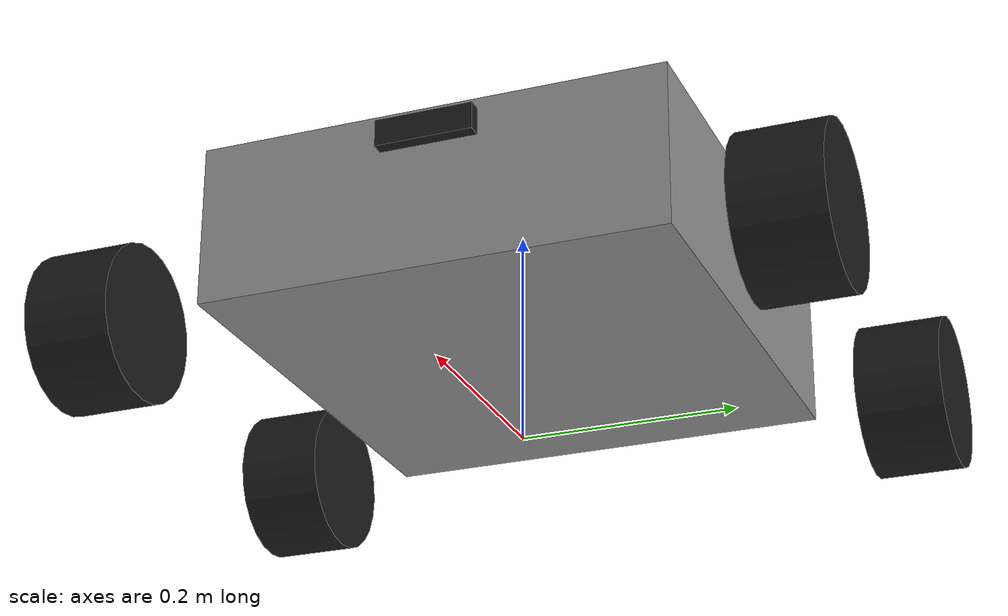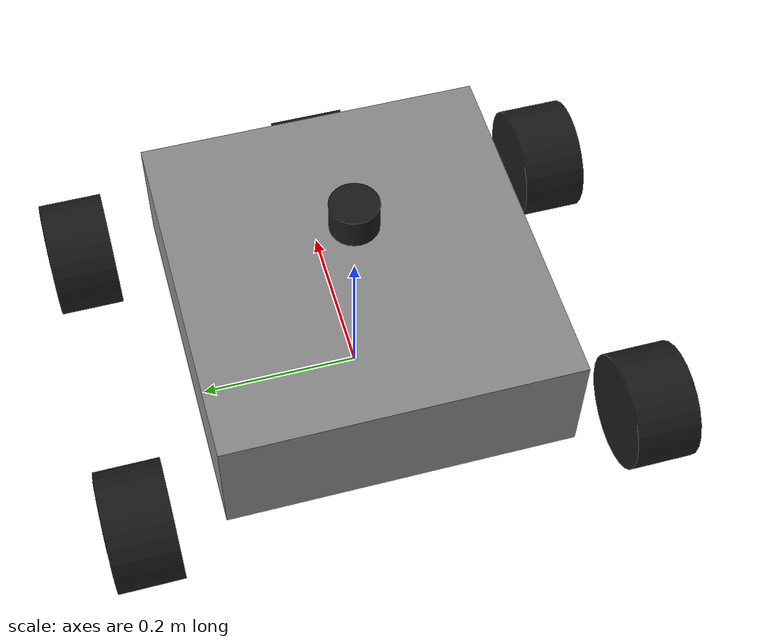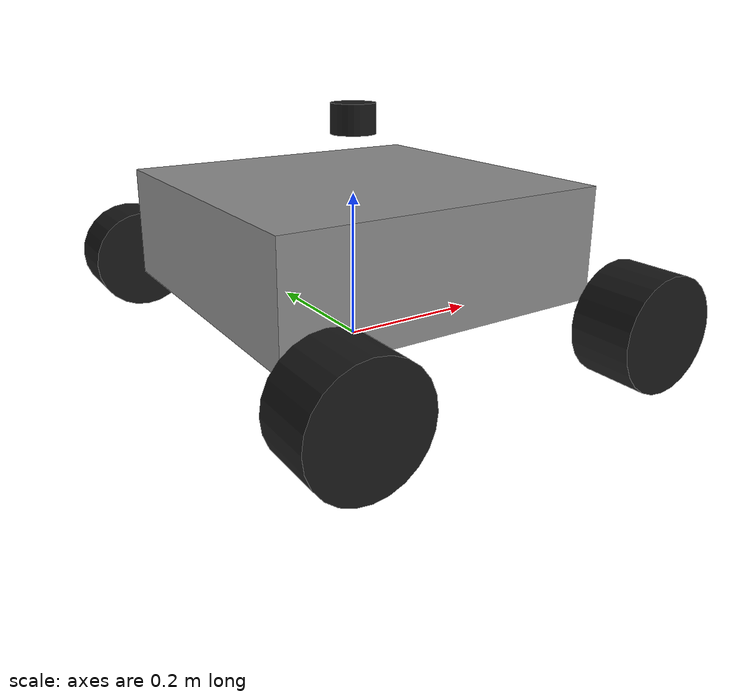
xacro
<?xml version="1.0"?>
<robot name="rover" xmlns:xacro="http://www.ros.org/wiki/xacro">

  <xacro:arg name="drive_type" default="skid4"/>
  <xacro:arg name="wheel_radius" default="0.07225"/>
  <xacro:arg name="wheel_width" default="0.08"/>
  <xacro:arg name="track" default="0.63"/>
  <xacro:arg name="wheelbase" default="0.41"/>
  <xacro:arg name="base_length" default="0.45"/>
  <xacro:arg name="base_width" default="0.43"/>
  <xacro:arg name="base_height" default="0.15"/>
  <xacro:arg name="platform_offset_x" default="0.0"/>
  <xacro:arg name="lidar_x" default="0.0"/>
  <xacro:arg name="lidar_y" default="0.0"/>
  <xacro:arg name="lidar_z" default="0.22775"/>
  <xacro:arg name="lidar_yaw" default="0.0"/>
  <xacro:arg name="camera_x" default="0.225"/>
  <xacro:arg name="camera_y" default="0.0"/>
  <xacro:arg name="camera_z" default="0.12775"/>
  <xacro:arg name="camera_yaw" default="0.0"/>

  <xacro:property name="drive_type" value="$(arg drive_type)"/>
  <xacro:property name="wheel_radius" value="$(arg wheel_radius)"/>
  <xacro:property name="wheel_width" value="$(arg wheel_width)"/>
  <xacro:property name="track" value="$(arg track)"/>
  <xacro:property name="wheelbase" value="$(arg wheelbase)"/>
  <xacro:property name="base_length" value="$(arg base_length)"/>
  <xacro:property name="base_width" value="$(arg base_width)"/>
  <xacro:property name="base_height" value="$(arg base_height)"/>

  <material name="grey">
    <color rgba="0.55 0.55 0.55 1.0"/>
  </material>
  <material name="black">
    <color rgba="0.1 0.1 0.1 1.0"/>
  </material>

  <link name="base_footprint"/>

  <!-- The platform box is drawn where it really is: its centre can be ahead of
       or behind the rotation centre. -->
  <link name="base_link">
    <visual>
      <origin xyz="$(arg platform_offset_x) 0 ${base_height / 2}" rpy="0 0 0"/>
      <geometry>
        <box size="${base_length} ${base_width} ${base_height}"/>
      </geometry>
      <material name="grey"/>
    </visual>
    <collision>
      <origin xyz="$(arg platform_offset_x) 0 ${base_height / 2}" rpy="0 0 0"/>
      <geometry>
        <box size="${base_length} ${base_width} ${base_height}"/>
      </geometry>
    </collision>
  </link>

  <joint name="base_footprint_joint" type="fixed">
    <parent link="base_footprint"/>
    <child link="base_link"/>
    <origin xyz="0 0 ${wheel_radius}" rpy="0 0 0"/>
  </joint>

  <xacro:macro name="wheel" params="prefix x y">
    <link name="${prefix}_wheel_link">
      <visual>
        <origin xyz="0 0 0" rpy="${pi/2} 0 0"/>
        <geometry>
          <cylinder radius="${wheel_radius}" length="${wheel_width}"/>
        </geometry>
        <material name="black"/>
      </visual>
      <collision>
        <origin xyz="0 0 0" rpy="${pi/2} 0 0"/>
        <geometry>
          <cylinder radius="${wheel_radius}" length="${wheel_width}"/>
        </geometry>
      </collision>
    </link>
    <joint name="${prefix}_wheel_joint" type="continuous">
      <parent link="base_link"/>
      <child link="${prefix}_wheel_link"/>
      <origin xyz="${x} ${y} 0" rpy="0 0 0"/>
      <axis xyz="0 1 0"/>
    </joint>
  </xacro:macro>

  <xacro:if value="${drive_type == 'skid4'}">
    <xacro:wheel prefix="front_left" x="${wheelbase / 2}" y="${track / 2}"/>
    <xacro:wheel prefix="front_right" x="${wheelbase / 2}" y="${-track / 2}"/>
    <xacro:wheel prefix="rear_left" x="${-wheelbase / 2}" y="${track / 2}"/>
    <xacro:wheel prefix="rear_right" x="${-wheelbase / 2}" y="${-track / 2}"/>
  </xacro:if>
  <xacro:unless value="${drive_type == 'skid4'}">
    <xacro:wheel prefix="left" x="0" y="${track / 2}"/>
    <xacro:wheel prefix="right" x="0" y="${-track / 2}"/>
  </xacro:unless>

  <link name="laser_frame">
    <visual>
      <geometry>
        <cylinder radius="0.03" length="0.04"/>
      </geometry>
      <material name="black"/>
    </visual>
  </link>
  <joint name="laser_joint" type="fixed">
    <parent link="base_link"/>
    <child link="laser_frame"/>
    <origin xyz="$(arg lidar_x) $(arg lidar_y) $(arg lidar_z)" rpy="0 0 $(arg lidar_yaw)"/>
  </joint>

  <link name="camera_link">
    <visual>
      <geometry>
        <box size="0.025 0.09 0.025"/>
      </geometry>
      <material name="black"/>
    </visual>
  </link>
  <joint name="camera_joint" type="fixed">
    <parent link="base_link"/>
    <child link="camera_link"/>
    <origin xyz="$(arg camera_x) $(arg camera_y) $(arg camera_z)" rpy="0 0 $(arg camera_yaw)"/>
  </joint>

  <link name="imu_link"/>
  <joint name="imu_joint" type="fixed">
    <parent link="base_link"/>
    <child link="imu_link"/>
    <origin xyz="0 0 0" rpy="0 0 0"/>
  </joint>

</robot>
